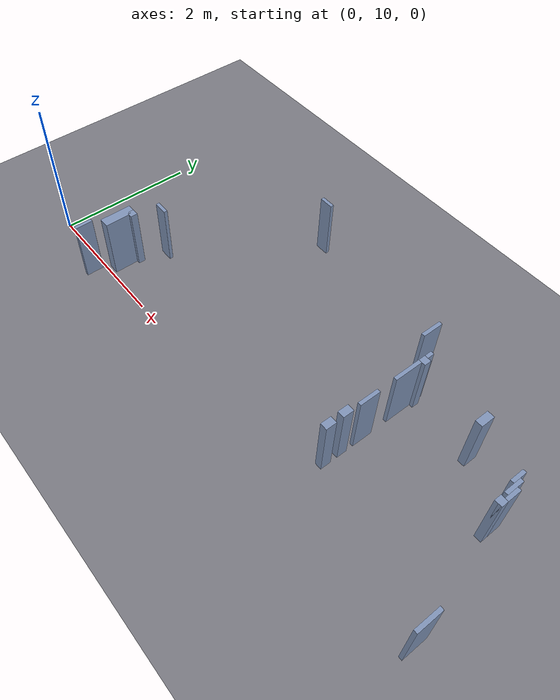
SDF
<sdf version="1.8">
 <world name="capture_fresh">
  <model name="ground_plane">
   <static>true</static>
   <link name="link">
    <collision name="collision">
     <geometry><plane><normal>0 0 1</normal><size>80 80</size></plane></geometry>
    </collision>
    <visual name="visual">
     <geometry><plane><normal>0 0 1</normal><size>80 80</size></plane></geometry>
     <material><ambient>0.40 0.40 0.42 1</ambient><diffuse>0.48 0.48 0.51 1</diffuse></material>
    </visual>
   </link>
  </model>
  <model name="obstacle_166">
   <static>true</static>
   <pose>2.682 12.683 0.450 0 0 0</pose>
   <link name="link">
    <collision name="collision"><geometry><box><size>0.200 0.050 0.900</size></box></geometry></collision>
    <visual name="visual">
     <geometry><box><size>0.200 0.050 0.900</size></box></geometry>
     <material>
      <ambient>0.42 0.48 0.58 1</ambient>
      <diffuse>0.50 0.58 0.72 1</diffuse>
      <specular>0.15 0.15 0.15 1</specular>
     </material>
    </visual>
   </link>
  </model>
  <model name="obstacle_169">
   <static>true</static>
   <pose>5.107 12.208 0.450 0 0 0</pose>
   <link name="link">
    <collision name="collision"><geometry><box><size>0.050 0.300 0.900</size></box></geometry></collision>
    <visual name="visual">
     <geometry><box><size>0.050 0.300 0.900</size></box></geometry>
     <material>
      <ambient>0.42 0.48 0.58 1</ambient>
      <diffuse>0.50 0.58 0.72 1</diffuse>
      <specular>0.15 0.15 0.15 1</specular>
     </material>
    </visual>
   </link>
  </model>
  <model name="obstacle_170">
   <static>true</static>
   <pose>5.382 11.808 0.450 0 0 0</pose>
   <link name="link">
    <collision name="collision"><geometry><box><size>0.100 0.100 0.900</size></box></geometry></collision>
    <visual name="visual">
     <geometry><box><size>0.100 0.100 0.900</size></box></geometry>
     <material>
      <ambient>0.42 0.48 0.58 1</ambient>
      <diffuse>0.50 0.58 0.72 1</diffuse>
      <specular>0.15 0.15 0.15 1</specular>
     </material>
    </visual>
   </link>
  </model>
  <model name="obstacle_171">
   <static>true</static>
   <pose>6.332 11.758 0.450 0 0 0</pose>
   <link name="link">
    <collision name="collision"><geometry><box><size>0.100 0.200 0.900</size></box></geometry></collision>
    <visual name="visual">
     <geometry><box><size>0.100 0.200 0.900</size></box></geometry>
     <material>
      <ambient>0.42 0.48 0.58 1</ambient>
      <diffuse>0.50 0.58 0.72 1</diffuse>
      <specular>0.15 0.15 0.15 1</specular>
     </material>
    </visual>
   </link>
  </model>
  <model name="obstacle_172">
   <static>true</static>
   <pose>7.007 11.508 0.450 0 0 0</pose>
   <link name="link">
    <collision name="collision"><geometry><box><size>0.050 0.200 0.900</size></box></geometry></collision>
    <visual name="visual">
     <geometry><box><size>0.050 0.200 0.900</size></box></geometry>
     <material>
      <ambient>0.42 0.48 0.58 1</ambient>
      <diffuse>0.50 0.58 0.72 1</diffuse>
      <specular>0.15 0.15 0.15 1</specular>
     </material>
    </visual>
   </link>
  </model>
  <model name="obstacle_173">
   <static>true</static>
   <pose>7.057 11.383 0.450 0 0 0</pose>
   <link name="link">
    <collision name="collision"><geometry><box><size>0.050 0.250 0.900</size></box></geometry></collision>
    <visual name="visual">
     <geometry><box><size>0.050 0.250 0.900</size></box></geometry>
     <material>
      <ambient>0.42 0.48 0.58 1</ambient>
      <diffuse>0.50 0.58 0.72 1</diffuse>
      <specular>0.15 0.15 0.15 1</specular>
     </material>
    </visual>
   </link>
  </model>
  <model name="obstacle_174">
   <static>true</static>
   <pose>7.082 11.158 0.450 0 0 0</pose>
   <link name="link">
    <collision name="collision"><geometry><box><size>0.100 0.100 0.900</size></box></geometry></collision>
    <visual name="visual">
     <geometry><box><size>0.100 0.100 0.900</size></box></geometry>
     <material>
      <ambient>0.42 0.48 0.58 1</ambient>
      <diffuse>0.50 0.58 0.72 1</diffuse>
      <specular>0.15 0.15 0.15 1</specular>
     </material>
    </visual>
   </link>
  </model>
  <model name="obstacle_175">
   <static>true</static>
   <pose>5.357 11.658 0.450 0 0 0</pose>
   <link name="link">
    <collision name="collision"><geometry><box><size>0.050 0.600 0.900</size></box></geometry></collision>
    <visual name="visual">
     <geometry><box><size>0.050 0.600 0.900</size></box></geometry>
     <material>
      <ambient>0.42 0.48 0.58 1</ambient>
      <diffuse>0.50 0.58 0.72 1</diffuse>
      <specular>0.15 0.15 0.15 1</specular>
     </material>
    </visual>
   </link>
  </model>
  <model name="obstacle_176">
   <static>true</static>
   <pose>7.107 11.258 0.450 0 0 0</pose>
   <link name="link">
    <collision name="collision"><geometry><box><size>0.050 0.300 0.900</size></box></geometry></collision>
    <visual name="visual">
     <geometry><box><size>0.050 0.300 0.900</size></box></geometry>
     <material>
      <ambient>0.42 0.48 0.58 1</ambient>
      <diffuse>0.50 0.58 0.72 1</diffuse>
      <specular>0.15 0.15 0.15 1</specular>
     </material>
    </visual>
   </link>
  </model>
  <model name="obstacle_177">
   <static>true</static>
   <pose>1.382 10.833 0.450 0 0 0</pose>
   <link name="link">
    <collision name="collision"><geometry><box><size>0.200 0.050 0.900</size></box></geometry></collision>
    <visual name="visual">
     <geometry><box><size>0.200 0.050 0.900</size></box></geometry>
     <material>
      <ambient>0.42 0.48 0.58 1</ambient>
      <diffuse>0.50 0.58 0.72 1</diffuse>
      <specular>0.15 0.15 0.15 1</specular>
     </material>
    </visual>
   </link>
  </model>
  <model name="obstacle_178">
   <static>true</static>
   <pose>5.357 10.958 0.450 0 0 0</pose>
   <link name="link">
    <collision name="collision"><geometry><box><size>0.050 0.300 0.900</size></box></geometry></collision>
    <visual name="visual">
     <geometry><box><size>0.050 0.300 0.900</size></box></geometry>
     <material>
      <ambient>0.42 0.48 0.58 1</ambient>
      <diffuse>0.50 0.58 0.72 1</diffuse>
      <specular>0.15 0.15 0.15 1</specular>
     </material>
    </visual>
   </link>
  </model>
  <model name="obstacle_179">
   <static>true</static>
   <pose>5.332 10.633 0.450 0 0 0</pose>
   <link name="link">
    <collision name="collision"><geometry><box><size>0.100 0.150 0.900</size></box></geometry></collision>
    <visual name="visual">
     <geometry><box><size>0.100 0.150 0.900</size></box></geometry>
     <material>
      <ambient>0.42 0.48 0.58 1</ambient>
      <diffuse>0.50 0.58 0.72 1</diffuse>
      <specular>0.15 0.15 0.15 1</specular>
     </material>
    </visual>
   </link>
  </model>
  <model name="obstacle_182">
   <static>true</static>
   <pose>1.232 10.458 0.450 0 0 0</pose>
   <link name="link">
    <collision name="collision"><geometry><box><size>0.100 0.100 0.900</size></box></geometry></collision>
    <visual name="visual">
     <geometry><box><size>0.100 0.100 0.900</size></box></geometry>
     <material>
      <ambient>0.42 0.48 0.58 1</ambient>
      <diffuse>0.50 0.58 0.72 1</diffuse>
      <specular>0.15 0.15 0.15 1</specular>
     </material>
    </visual>
   </link>
  </model>
  <model name="obstacle_183">
   <static>true</static>
   <pose>5.332 10.383 0.450 0 0 0</pose>
   <link name="link">
    <collision name="collision"><geometry><box><size>0.100 0.150 0.900</size></box></geometry></collision>
    <visual name="visual">
     <geometry><box><size>0.100 0.150 0.900</size></box></geometry>
     <material>
      <ambient>0.42 0.48 0.58 1</ambient>
      <diffuse>0.50 0.58 0.72 1</diffuse>
      <specular>0.15 0.15 0.15 1</specular>
     </material>
    </visual>
   </link>
  </model>
  <model name="obstacle_185">
   <static>true</static>
   <pose>1.157 10.283 0.450 0 0 0</pose>
   <link name="link">
    <collision name="collision"><geometry><box><size>0.150 0.450 0.900</size></box></geometry></collision>
    <visual name="visual">
     <geometry><box><size>0.150 0.450 0.900</size></box></geometry>
     <material>
      <ambient>0.42 0.48 0.58 1</ambient>
      <diffuse>0.50 0.58 0.72 1</diffuse>
      <specular>0.15 0.15 0.15 1</specular>
     </material>
    </visual>
   </link>
  </model>
  <model name="obstacle_186">
   <static>true</static>
   <pose>1.007 9.833 0.450 0 0 0</pose>
   <link name="link">
    <collision name="collision"><geometry><box><size>0.050 0.250 0.900</size></box></geometry></collision>
    <visual name="visual">
     <geometry><box><size>0.050 0.250 0.900</size></box></geometry>
     <material>
      <ambient>0.42 0.48 0.58 1</ambient>
      <diffuse>0.50 0.58 0.72 1</diffuse>
      <specular>0.15 0.15 0.15 1</specular>
     </material>
    </visual>
   </link>
  </model>
  <model name="obstacle_188">
   <static>true</static>
   <pose>7.457 9.733 0.450 0 0 0</pose>
   <link name="link">
    <collision name="collision"><geometry><box><size>0.050 0.350 0.900</size></box></geometry></collision>
    <visual name="visual">
     <geometry><box><size>0.050 0.350 0.900</size></box></geometry>
     <material>
      <ambient>0.42 0.48 0.58 1</ambient>
      <diffuse>0.50 0.58 0.72 1</diffuse>
      <specular>0.15 0.15 0.15 1</specular>
     </material>
    </visual>
   </link>
  </model>
 </world>
</sdf>
